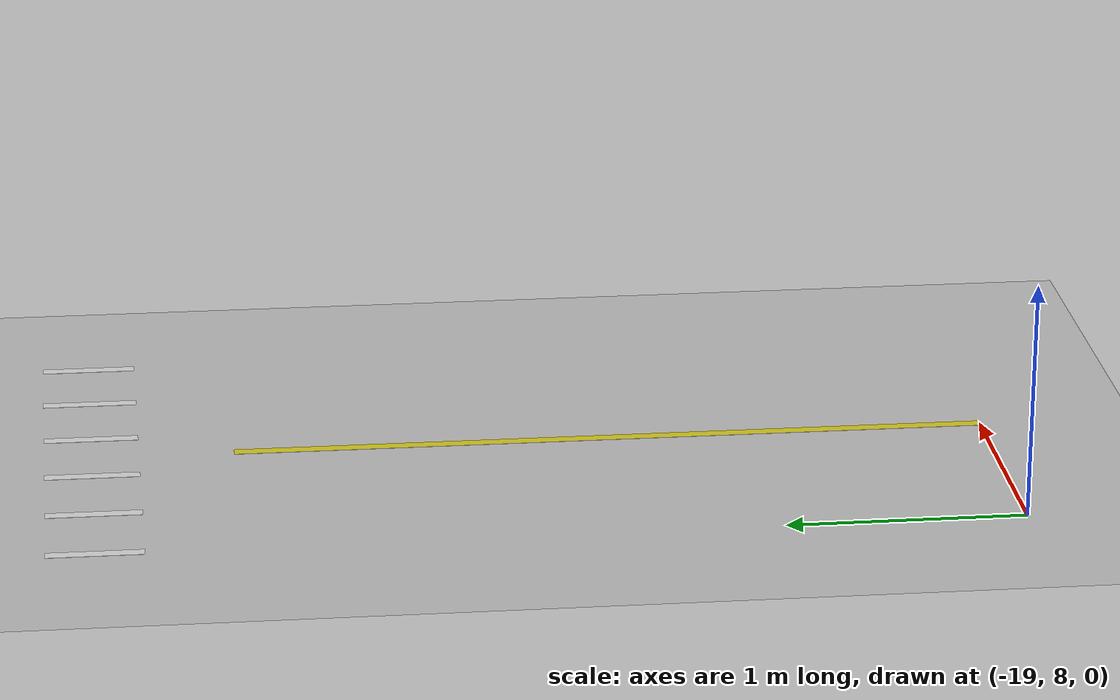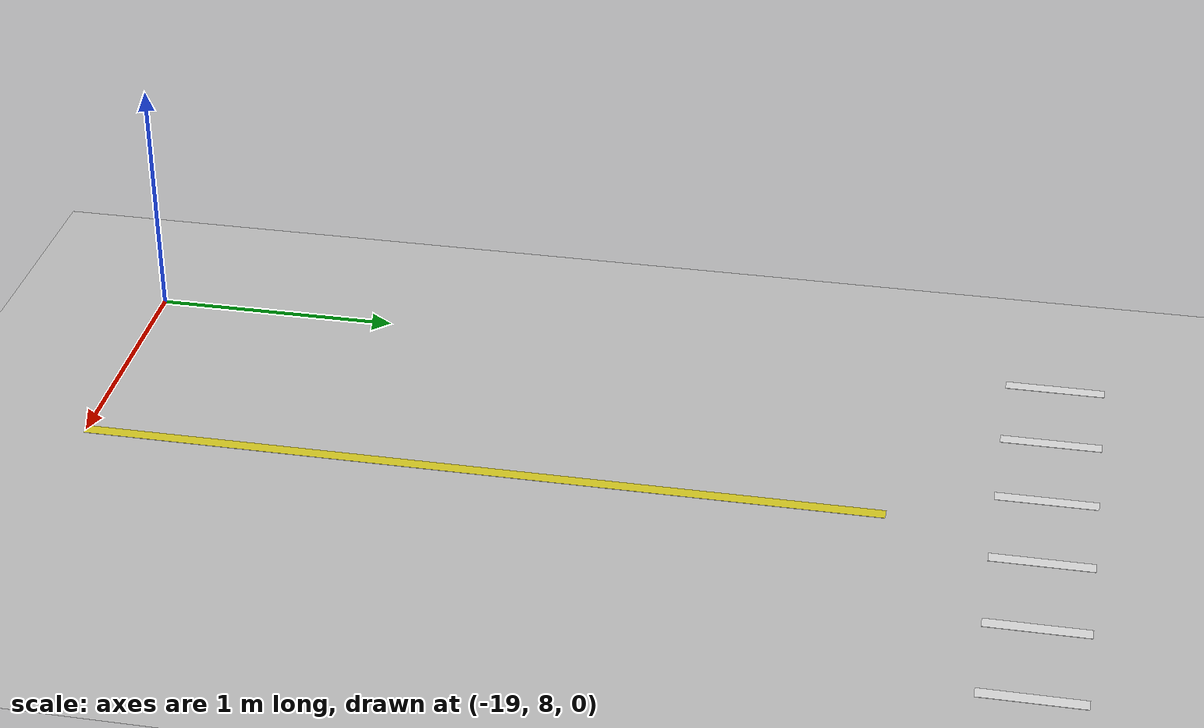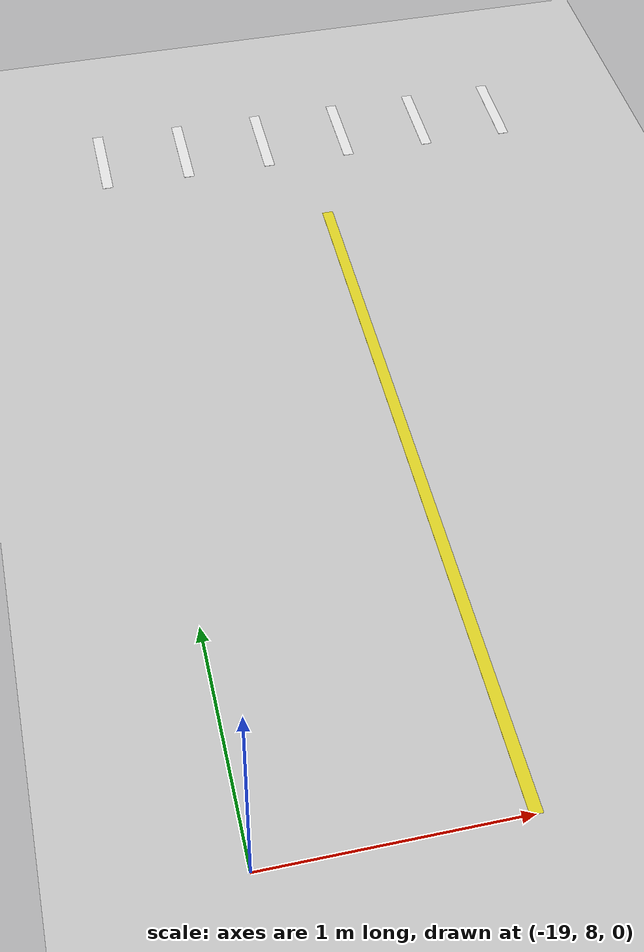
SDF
<sdf version="1.6">
 <world name="default">
  <model name="ground_plane">
   <static>1</static>
   <link name="link">
    <collision name="collision">
     <geometry><plane><normal>0 0 1</normal><size>100 100</size></plane></geometry>
     <surface><friction><ode><mu>100</mu><mu2>50</mu2></ode></friction></surface>
    </collision>
    <visual name="visual">
     <cast_shadows>0</cast_shadows>
     <geometry><plane><normal>0 0 1</normal><size>100 100</size></plane></geometry>
     <material>
      <script><uri>file://media/materials/scripts/gazebo.material</uri><name>Gazebo/Grey</name></script>
     </material>
    </visual>
   </link>
  </model>
  <model name="line320cm_2">
   <link name="link_0">
    <inertial>
     <mass>1</mass>
     <inertia>
      <ixx>0.166667</ixx>
      <ixy>0</ixy>
      <ixz>0</ixz>
      <iyy>0.166667</iyy>
      <iyz>0</iyz>
      <izz>0.166667</izz>
     </inertia>
    </inertial>
    <visual name="visual">
     <geometry><box><size>3.2 0.05 0.001</size></box></geometry>
     <material>
      <lighting>1</lighting>
      <script><uri>file://media/materials/scripts/gazebo.material</uri><name>Gazebo/Yellow</name></script>
     </material>
    </visual>
   </link>
   <static>1</static>
   <pose>-18 9.6 0 0 -0 1.5708</pose>
  </model>
  <model name="zebra_crossing_40cmx200cm_2">
   <link name="link_2">
    <inertial>
     <mass>1</mass>
     <inertia>
      <ixx>0.166667</ixx>
      <ixy>0</ixy>
      <ixz>0</ixz>
      <iyy>0.166667</iyy>
      <iyz>0</iyz>
      <izz>0.166667</izz>
     </inertia>
    </inertial>
    <visual name="ModelPreview_5::link_2::visual_1">
     <pose>-0.2 0 0 0 -0 0</pose>
     <geometry><box><size>0.05 0.4 0.001</size></box></geometry>
     <material>
      <lighting>1</lighting>
      <script><uri>file://media/materials/scripts/gazebo.material</uri><name>Gazebo/White</name></script>
     </material>
    </visual>
    <visual name="ModelPreview_5::link_2::visual_3">
     <pose>-0.6 0 0 0 -0 0</pose>
     <geometry><box><size>0.05 0.4 0.001</size></box></geometry>
     <material>
      <lighting>1</lighting>
      <script><uri>file://media/materials/scripts/gazebo.material</uri><name>Gazebo/White</name></script>
     </material>
    </visual>
    <visual name="ModelPreview_5::link_2::visual_4">
     <pose>1 0 0 0 -0 0</pose>
     <geometry><box><size>0.05 0.4 0.001</size></box></geometry>
     <material>
      <lighting>1</lighting>
      <script><uri>file://media/materials/scripts/gazebo.material</uri><name>Gazebo/White</name></script>
     </material>
    </visual>
    <visual name="visual">
     <pose>0.2 0 0 0 -0 0</pose>
     <geometry><box><size>0.05 0.4 0.001</size></box></geometry>
     <material>
      <lighting>1</lighting>
      <script><uri>file://media/materials/scripts/gazebo.material</uri><name>Gazebo/White</name></script>
     </material>
    </visual>
    <visual name="ModelPreview_5::link_2::visual_5">
     <pose>-1 0 0 0 -0 0</pose>
     <geometry><box><size>0.05 0.4 0.001</size></box></geometry>
     <material>
      <lighting>1</lighting>
      <script><uri>file://media/materials/scripts/gazebo.material</uri><name>Gazebo/White</name></script>
     </material>
    </visual>
    <visual name="ModelPreview_5::link_2::visual_2">
     <pose>0.6 0 0 0 -0 0</pose>
     <geometry><box><size>0.05 0.4 0.001</size></box></geometry>
     <material>
      <lighting>1</lighting>
      <script><uri>file://media/materials/scripts/gazebo.material</uri><name>Gazebo/White</name></script>
     </material>
    </visual>
    <collision name="collision_5">
     <pose>-1 0 0 0 -0 0</pose>
     <geometry><box><size>0.05 0.4 1e-05</size></box></geometry>
    </collision>
    <collision name="collision">
     <pose>0.2 0 0 0 -0 0</pose>
     <geometry><box><size>0.05 0.4 1e-05</size></box></geometry>
    </collision>
    <collision name="collision_3">
     <pose>-0.6 0 0 0 -0 0</pose>
     <geometry><box><size>0.05 0.4 1e-05</size></box></geometry>
    </collision>
    <collision name="collision_4">
     <pose>1 0 0 0 -0 0</pose>
     <geometry><box><size>0.05 0.4 1e-05</size></box></geometry>
    </collision>
    <collision name="collision_2">
     <pose>0.6 0 0 0 -0 0</pose>
     <geometry><box><size>0.05 0.4 1e-05</size></box></geometry>
    </collision>
    <collision name="collision_1">
     <pose>-0.2 0 0 0 -0 0</pose>
     <geometry><box><size>0.05 0.4 1e-05</size></box></geometry>
    </collision>
   </link>
   <static>1</static>
   <pose>-18 11.8 0 0 -0 0</pose>
  </model>
 </world>
</sdf>
